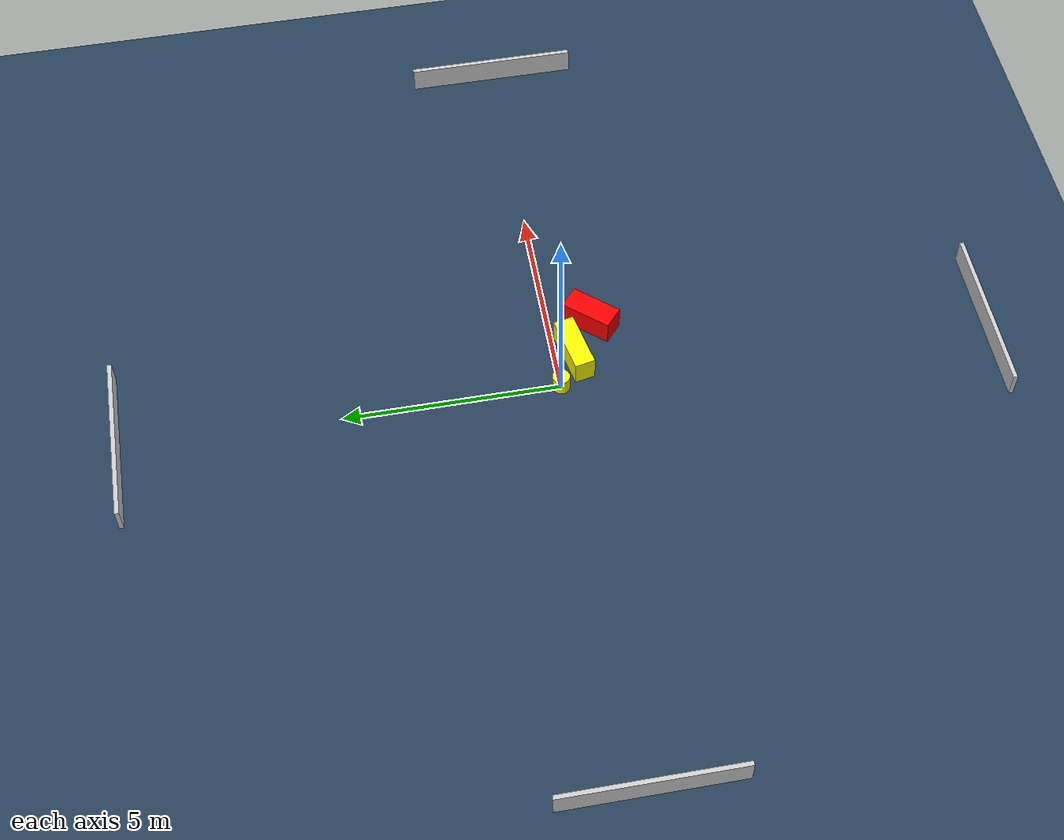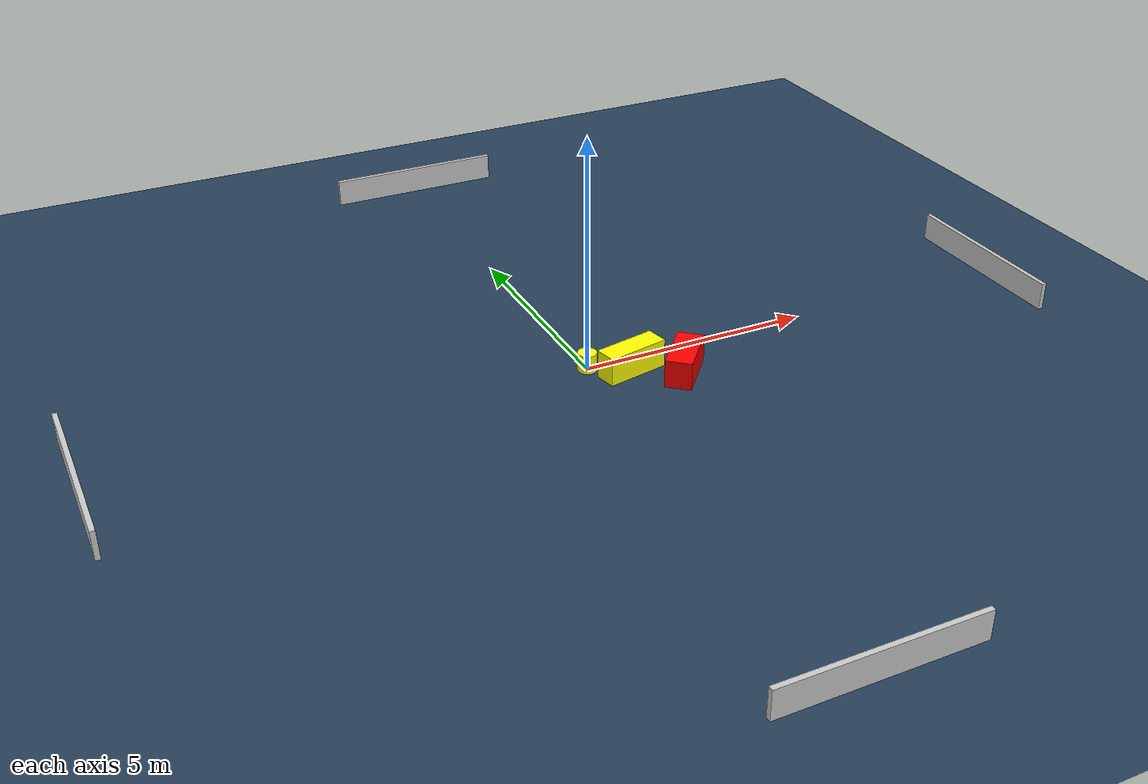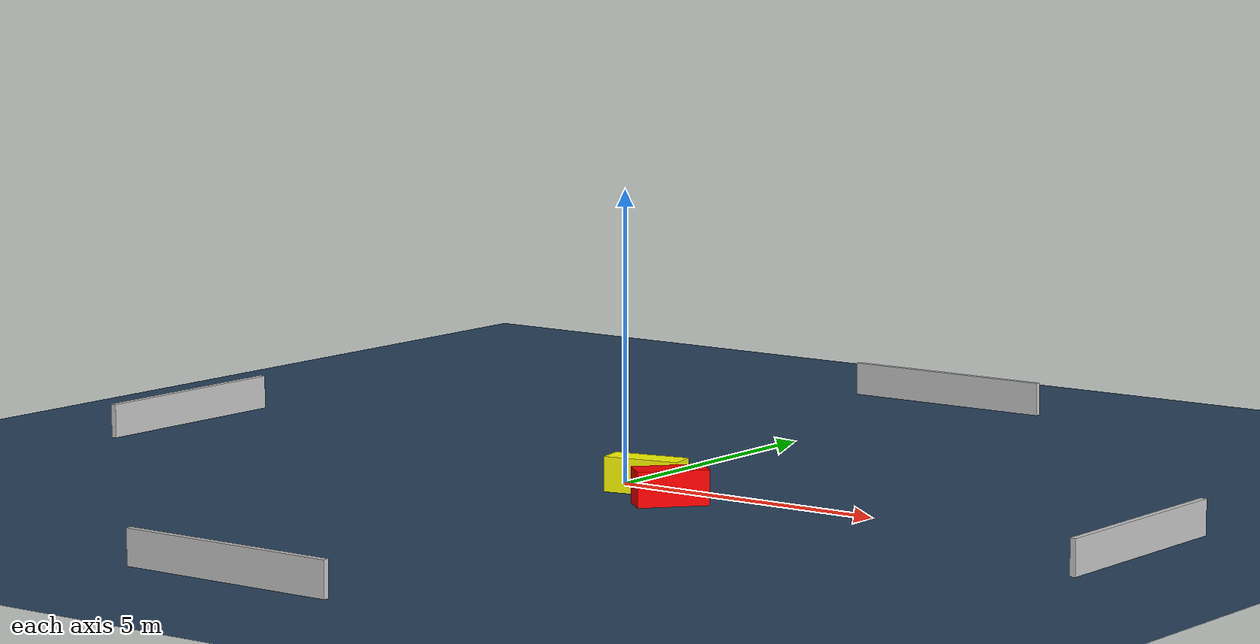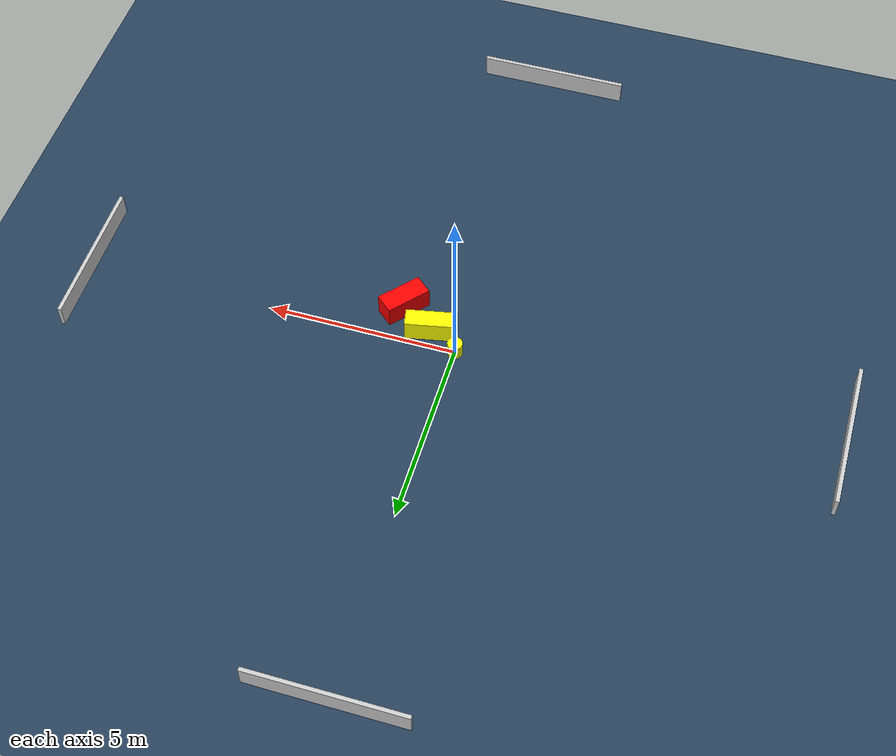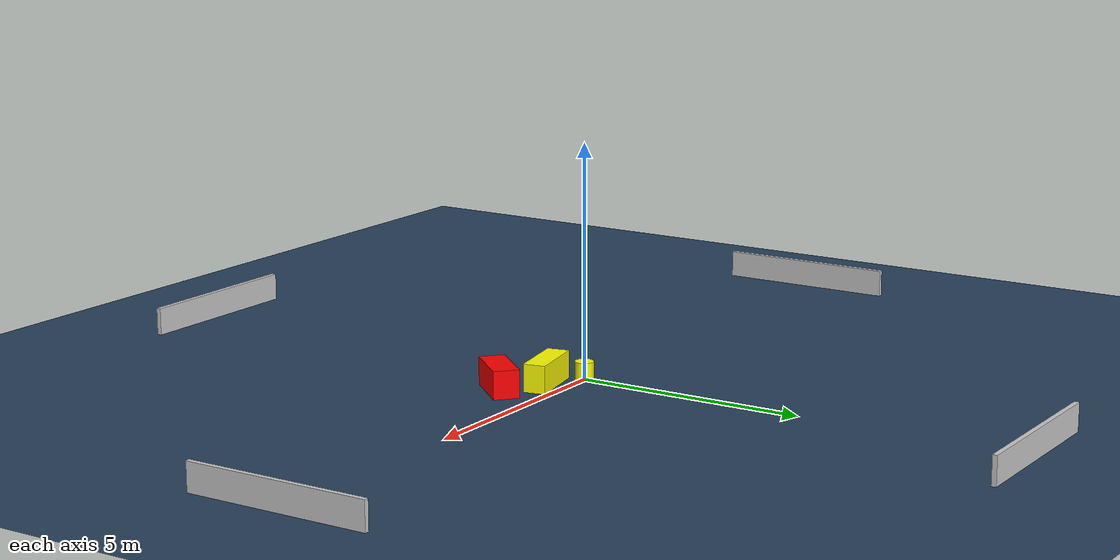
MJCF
<?xml version="1.0" ?>
<mujoco model="generated_environment">
  <option timestep="0.01" integrator="RK4" cone="elliptic"/>
  <default>
    <geom density="1"/>
  </default>
  <asset>
    <texture builtin="gradient" height="3072" name="skybox" rgb1="0.3 0.5 0.7" rgb2="0 0 0" type="skybox" width="512"/>
    <texture builtin="checker" height="300" name="groundplane" rgb1="0.2 0.3 0.4" rgb2="0.1 0.2 0.3" type="2d" width="300"/>
    <material name="groundplane" reflectance="0.2" texrepeat="5 5" texture="groundplane"/>
  </asset>
  <worldbody>
    <light dir="0 0 -1" directional="true" pos="0 0 1.5"/>
    <geom condim="3" friction="0.5 0.005 0.001" material="groundplane" name="floor" pos="0 0 0" size="0 0 0.05" type="plane"/>
    <body name="walls">
      <geom name="wall_1" condim="4" pos="-10.0 0.0 0.3" rgba="0.800000011920929 0.800000011920929 0.800000011920929 1.0" size="0.05 2.0 0.3" type="box"/>
      <geom name="wall_2" condim="4" pos="10.0 0.0 0.3" rgba="0.800000011920929 0.800000011920929 0.800000011920929 1.0" size="0.05 2.0 0.3" type="box"/>
      <geom name="wall_3" condim="4" pos="0.0 -10.0 0.3" rgba="0.800000011920929 0.800000011920929 0.800000011920929 1.0" size="2.0 0.05 0.3" type="box"/>
      <geom name="wall_4" condim="4" pos="0.0 10.0 0.3" rgba="0.800000011920929 0.800000011920929 0.800000011920929 1.0" size="2.0 0.05 0.3" type="box"/>
    </body>
    <body name="robot">
      <joint name="joint_x" type="slide" pos="0 0 0" axis="1 0 0"/>
      <joint name="joint_y" type="slide" pos="0 0 0" axis="0 1 0"/>
      <geom name="robot" type="cylinder" pos="0.0 0.0 0.2" size="0.2 0.2 0.0" mass="5.0" friction="1.0 0.005 0.0001" condim="4" rgba="1.0 1.0 0.0 1.0"/>
    </body>
    <body name="obstacle_1_movable">
      <geom name="obstacle_1_movable" condim="4" pos="0.7680862612009993 -0.44009322142186025 0.3" euler="0 0 191.395397679498" friction="0.0 0.005 0.001" rgba="1.0 1.0 0.0 1.0" size="0.6703356286933528 0.23720289654086796 0.3" type="box" mass="0.1"/>
      <joint type="free"/>
    </body>
    <body name="obstacle_2_static">
      <geom name="obstacle_2_static" condim="4" pos="1.6774365600856 -1.000564628807157 0.3" euler="0 0 318.9058114447058" friction="0.0 0.005 0.001" rgba="1.0 0.0 0.0 1.0" size="0.2752060492330306 0.6070614746568617 0.3" type="box"/>
    </body>
  </worldbody>
  <actuator>
    <motor name="actuator_x" joint="joint_x" gear="1" ctrlrange="-1 1"/>
    <motor name="actuator_y" joint="joint_y" gear="1" ctrlrange="-1 1"/>
  </actuator>
</mujoco>
